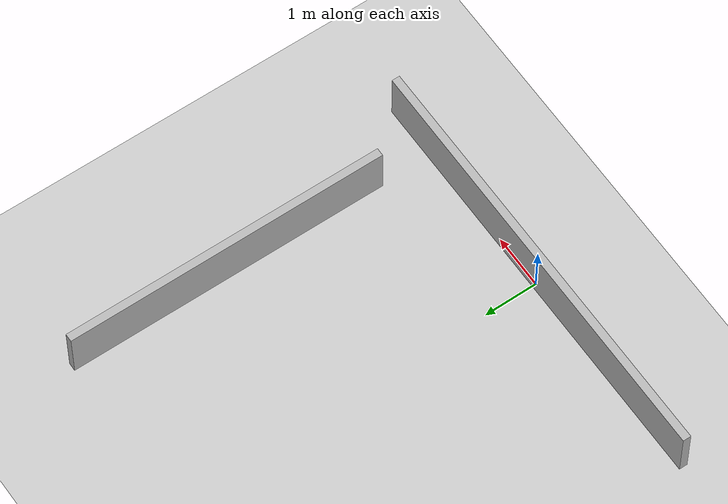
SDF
<?xml version="1.0"?>
<sdf version="1.6">
  <world name="env2_complex_19x22">
    <include>
      <uri>model://sun</uri>
    </include>
    <include>
      <uri>model://ground_plane</uri>
    </include>
    <model name="env2_internal_walls">
      <static>true</static>
      <link name="walls">
        <collision name="wall_a">
          <pose>0 0 0.5 0 0 0</pose>
          <geometry><box><size>8 0.15 1</size></box></geometry>
        </collision>
        <visual name="wall_a">
          <pose>0 0 0.5 0 0 0</pose>
          <geometry><box><size>8 0.15 1</size></box></geometry>
        </visual>
        <collision name="wall_b">
          <pose>3 4 0.5 0 0 1.5708</pose>
          <geometry><box><size>6 0.15 1</size></box></geometry>
        </collision>
        <visual name="wall_b">
          <pose>3 4 0.5 0 0 1.5708</pose>
          <geometry><box><size>6 0.15 1</size></box></geometry>
        </visual>
      </link>
    </model>
  </world>
</sdf>
